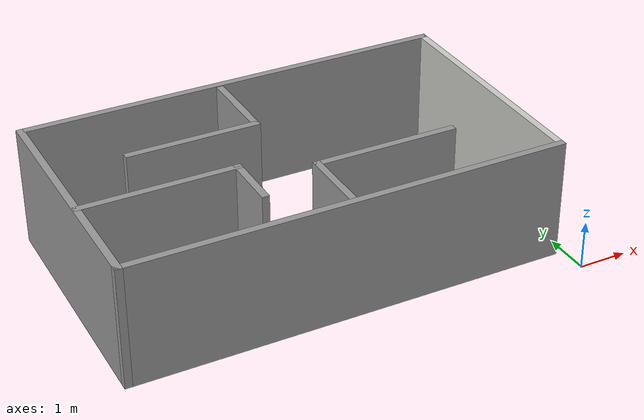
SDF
<?xml version='1.0'?>
<sdf version='1.7'>
  <model name='room'>
    <pose>-4.58916 2.92376 0 0 -0 0</pose>
    <link name='Wall_1'>
      <collision name='Wall_1_Collision'>
        <geometry>
          <box>
            <size>9 0.15 2.5</size>
          </box>
        </geometry>
        <pose>0 0 1.25 0 -0 0</pose>
      </collision>
      <visual name='Wall_1_Visual'>
        <pose>0 0 1.25 0 -0 0</pose>
        <geometry>
          <box>
            <size>9 0.15 2.5</size>
          </box>
        </geometry>
        <material>
          <script>
            <uri>file://media/materials/scripts/gazebo.material</uri>
            <name>Gazebo/Grey</name>
          </script>
          <ambient>1 1 1 1</ambient>
        </material>
        <meta>
          <layer>0</layer>
        </meta>
      </visual>
      <pose>-0.089163 2.84876 0 0 -0 0</pose>
    </link>
    <link name='Wall_10'>
      <collision name='Wall_10_Collision'>
        <geometry>
          <box>
            <size>1.25 0.15 2.5</size>
          </box>
        </geometry>
        <pose>0 0 1.25 0 -0 0</pose>
      </collision>
      <visual name='Wall_10_Visual'>
        <pose>0 0 1.25 0 -0 0</pose>
        <geometry>
          <box>
            <size>1.25 0.15 2.5</size>
          </box>
        </geometry>
        <material>
          <script>
            <uri>file://media/materials/scripts/gazebo.material</uri>
            <name>Gazebo/Grey</name>
          </script>
          <ambient>1 1 1 1</ambient>
        </material>
        <meta>
          <layer>0</layer>
        </meta>
      </visual>
      <pose>-1.39068 -0.787409 0 0 -0 -1.5708</pose>
    </link>
    <link name='Wall_12'>
      <collision name='Wall_12_Collision'>
        <geometry>
          <box>
            <size>1.5 0.15 2.5</size>
          </box>
        </geometry>
        <pose>0 0 1.25 0 -0 0</pose>
      </collision>
      <visual name='Wall_12_Visual'>
        <pose>0 0 1.25 0 -0 0</pose>
        <geometry>
          <box>
            <size>1.5 0.15 2.5</size>
          </box>
        </geometry>
        <material>
          <script>
            <uri>file://media/materials/scripts/gazebo.material</uri>
            <name>Gazebo/Grey</name>
          </script>
          <ambient>1 1 1 1</ambient>
        </material>
        <meta>
          <layer>0</layer>
        </meta>
      </visual>
      <pose>-0.048209 -1.48632 0 0 -0 1.5708</pose>
    </link>
    <link name='Wall_13'>
      <collision name='Wall_13_Collision'>
        <geometry>
          <box>
            <size>3 0.15 2.5</size>
          </box>
        </geometry>
        <pose>0 0 1.25 0 -0 0</pose>
      </collision>
      <visual name='Wall_13_Visual'>
        <pose>0 0 1.25 0 -0 0</pose>
        <geometry>
          <box>
            <size>3 0.15 2.5</size>
          </box>
        </geometry>
        <material>
          <script>
            <uri>file://media/materials/scripts/gazebo.material</uri>
            <name>Gazebo/Grey</name>
          </script>
          <ambient>1 1 1 1</ambient>
        </material>
        <meta>
          <layer>0</layer>
        </meta>
      </visual>
      <pose>1.37679 -0.811316 0 0 -0 0</pose>
    </link>
    <link name='Wall_2'>
      <collision name='Wall_2_Collision'>
        <geometry>
          <box>
            <size>5.25 0.15 2.5</size>
          </box>
        </geometry>
        <pose>0 0 1.25 0 -0 0</pose>
      </collision>
      <visual name='Wall_2_Visual'>
        <pose>0 0 1.25 0 -0 0</pose>
        <geometry>
          <box>
            <size>5.25 0.15 2.5</size>
          </box>
        </geometry>
        <material>
          <script>
            <uri>file://media/materials/scripts/gazebo.material</uri>
            <name>Gazebo/CeilingTiled</name>
          </script>
          <ambient>1 1 1 1</ambient>
        </material>
        <meta>
          <layer>0</layer>
        </meta>
      </visual>
      <pose>4.33584 0.298759 0 0 -0 -1.5708</pose>
    </link>
    <link name='Wall_3'>
      <collision name='Wall_3_Collision'>
        <geometry>
          <box>
            <size>9 0.15 2.5</size>
          </box>
        </geometry>
        <pose>0 0 1.25 0 -0 0</pose>
      </collision>
      <visual name='Wall_3_Visual'>
        <pose>0 0 1.25 0 -0 0</pose>
        <geometry>
          <box>
            <size>9 0.15 2.5</size>
          </box>
        </geometry>
        <material>
          <script>
            <uri>file://media/materials/scripts/gazebo.material</uri>
            <name>Gazebo/Grey</name>
          </script>
          <ambient>1 1 1 1</ambient>
        </material>
        <meta>
          <layer>0</layer>
        </meta>
      </visual>
      <pose>-0.089163 -2.25124 0 0 -0 3.14159</pose>
    </link>
    <link name='Wall_4'>
      <collision name='Wall_4_Collision'>
        <geometry>
          <box>
            <size>5.25 0.15 2.5</size>
          </box>
        </geometry>
        <pose>0 0 1.25 0 -0 0</pose>
      </collision>
      <visual name='Wall_4_Visual'>
        <pose>0 0 1.25 0 -0 0</pose>
        <geometry>
          <box>
            <size>5.25 0.15 2.5</size>
          </box>
        </geometry>
        <material>
          <script>
            <uri>file://media/materials/scripts/gazebo.material</uri>
            <name>Gazebo/Grey</name>
          </script>
          <ambient>1 1 1 1</ambient>
        </material>
        <meta>
          <layer>0</layer>
        </meta>
      </visual>
      <pose>-4.51416 0.298759 0 0 -0 1.5708</pose>
    </link>
    <link name='Wall_6'>
      <collision name='Wall_6_Collision'>
        <geometry>
          <box>
            <size>2.75 0.15 2.5</size>
          </box>
        </geometry>
        <pose>0 0 1.25 0 -0 0</pose>
      </collision>
      <visual name='Wall_6_Visual'>
        <pose>0 0 1.25 0 -0 0</pose>
        <geometry>
          <box>
            <size>2.75 0.15 2.5</size>
          </box>
        </geometry>
        <material>
          <script>
            <uri>file://media/materials/scripts/gazebo.material</uri>
            <name>Gazebo/Grey</name>
          </script>
          <ambient>1 1 1 1</ambient>
        </material>
        <meta>
          <layer>0</layer>
        </meta>
      </visual>
      <pose>-1.72152 1.07435 0 0 -0 0</pose>
    </link>
    <link name='Wall_7'>
      <collision name='Wall_7_Collision'>
        <geometry>
          <box>
            <size>1.75 0.15 2.5</size>
          </box>
        </geometry>
        <pose>0 0 1.25 0 -0 0</pose>
      </collision>
      <visual name='Wall_7_Visual'>
        <pose>0 0 1.25 0 -0 0</pose>
        <geometry>
          <box>
            <size>1.75 0.15 2.5</size>
          </box>
        </geometry>
        <material>
          <script>
            <uri>file://media/materials/scripts/gazebo.material</uri>
            <name>Gazebo/Grey</name>
          </script>
          <ambient>1 1 1 1</ambient>
        </material>
        <meta>
          <layer>0</layer>
        </meta>
      </visual>
      <pose>-0.42152 1.87435 0 0 -0 1.5708</pose>
    </link>
    <link name='Wall_9'>
      <collision name='Wall_9_Collision'>
        <geometry>
          <box>
            <size>3.25 0.15 2.5</size>
          </box>
        </geometry>
        <pose>0 0 1.25 0 -0 0</pose>
      </collision>
      <visual name='Wall_9_Visual'>
        <pose>0 0 1.25 0 -0 0</pose>
        <geometry>
          <box>
            <size>3.25 0.15 2.5</size>
          </box>
        </geometry>
        <material>
          <script>
            <uri>file://media/materials/scripts/gazebo.material</uri>
            <name>Gazebo/Grey</name>
          </script>
          <ambient>1 1 1 1</ambient>
        </material>
        <meta>
          <layer>0</layer>
        </meta>
      </visual>
      <pose>-2.94069 -0.237409 0 0 -0 0</pose>
    </link>
    <static>1</static>
  </model>
</sdf>
